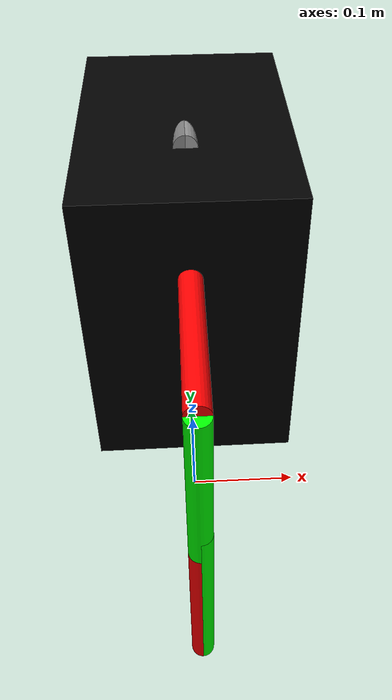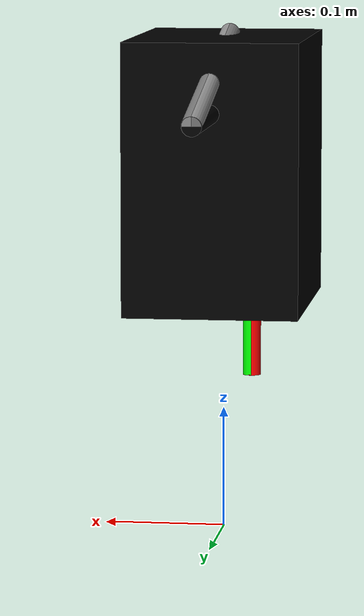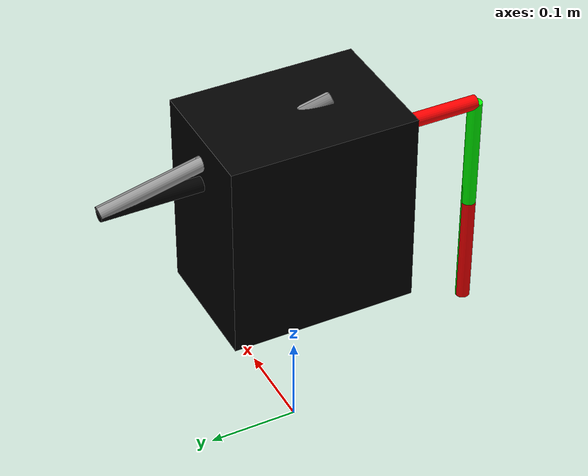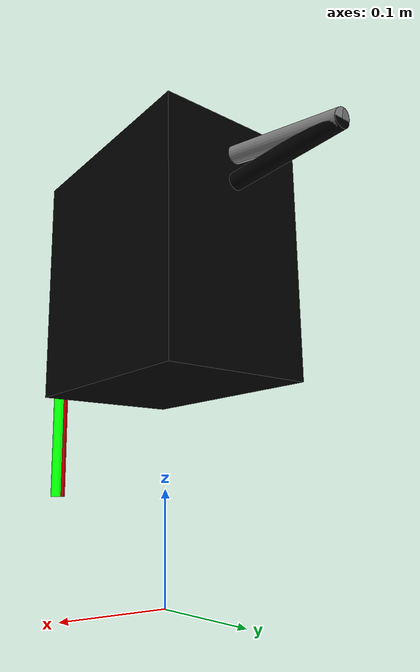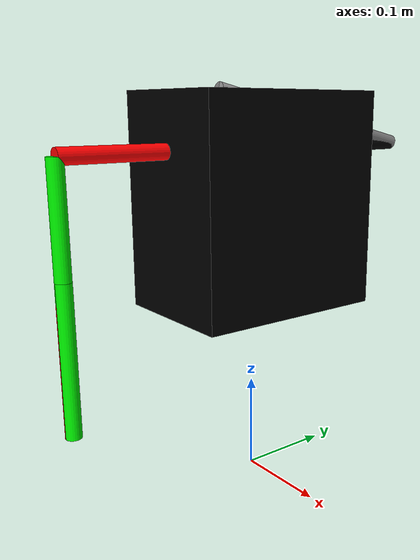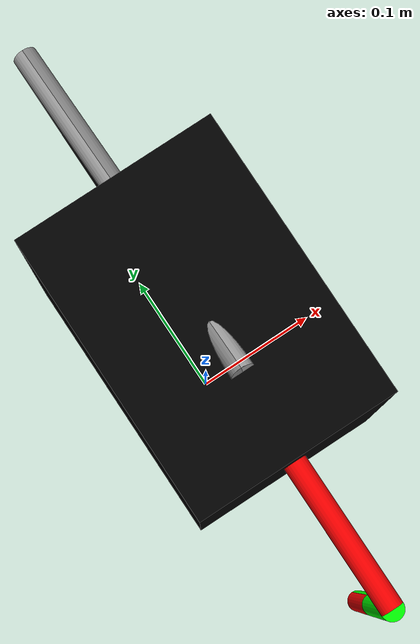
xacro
<?xml version="1.0"?>

<robot name="industrial_robot" xmlns:xacro="http://www.ros.org/wiki/xacro">
    <xacro:include filename="industrial_robot.xacro"/>
    <xacro:include filename="industrial_robot.ros2_control.xacro"/>
    <xacro:industrial_robot_ros2_control />
</robot>

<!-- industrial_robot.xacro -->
<robot xmlns:xacro="http://www.ros.org/wiki/xacro">
  <!-- Define xacro property for ros2_controllers config file path -->
  <!-- This allows the launch file to pass in the correct absolute path -->
  <!-- Default value is used if not provided by launch file -->
  <xacro:arg name="ros2_controllers_config" default="config/industrial_robot_ros2_controllers.yaml" />

  <material name="grey">
    <color rgba="0.5 0.5 0.5 1"/>
  </material>

  <material name="darkgrey">
    <color rgba="0.8 0.8 0.8 1"/>
  </material>

  <material name="blue">
    <color rgba="0 0 1 1"/>
  </material>

  <material name="red">
    <color rgba="1 0 0 1"/>
  </material>

  <material name="green">
    <color rgba="0 1 0 1"/>
  </material>

  <material name="black">
    <color rgba="0 0 0 1"/>
  </material>
  <!-- ================= TORSO ================= -->
  <link name="base_link">
    <visual>
      <geometry>
        <box size="0.143 0.205 0.222"/>
      </geometry>
      <origin xyz="0 0 0.3"/>
      <material name="black"/>

    </visual>
    <collision>
      <geometry>
        <box size="0.143 0.205 0.222"/>
      </geometry>
      <origin xyz="0 0 0.3"/>
    </collision>

    <inertial>
      <mass value="5.0" />
      <origin xyz="0 0 0.3" rpy="0 0 0"/>
      <inertia ixx="0.0228" ixy="0.0" ixz="0.0"
                iyy="0.0174" iyz="0.0"
                izz="0.0156"/>
    </inertial>
  </link>

  <!-- Shoulder height = 0.304 m -->
  <!-- Arm lateral offset = ±0.1025 m (half torso width) -->

  <!-- ================= LEFT ARM ================= -->

  <!-- Shoulder Pitch -->
  <joint name="left_shoulder_1" type="revolute">
    <parent link="base_link"/>
    <child link="left_link_1"/>

    <origin xyz="0 0.1025 0.354" rpy="0 0 0"/>

    <axis xyz="0 -1 0"/>

    <limit lower="-1.26" upper="4.44" effort="60" velocity="1.5"/>
  </joint>

  <!-- Link 1 - 11 cm -->
  <link name="left_link_1">
    <visual>
      <geometry>
        <cylinder length="0.11" radius="0.008"/>
      </geometry>
      <origin xyz="0 0.055 0" rpy="1.5708 0 0"/>
      <material name="black"/>
    </visual>

    <collision>
      <geometry>
        <box size="0.016 0.016 0.11"/>
      </geometry>
      <origin xyz="0 0.055 0" rpy="1.5708 0 0"/>
    </collision>

    <inertial>
      <origin xyz="0 0.055 0" rpy="1.5708 0 0"/>
      <mass value="1.0"/>
      <inertia
        ixx="0.001025" ixy="0.0" ixz="0.0"
        iyy="0.001025" iyz="0.0"
        izz="0.000032"/>
    </inertial>

  </link>

  <!-- Shoulder Roll -->
  <joint name="left_shoulder_2" type="revolute">
    <parent link="left_link_1"/>
    <child link="left_link_2"/>

    <origin xyz="0 0.11 0" rpy="-1.57 0 0"/>

    <axis xyz="1 0 0"/>

    <limit lower="2.7" upper="6.28" effort="60" velocity="1.5"/>
  </joint>

  <!-- Link 2 - 13 cm -->
  <link name="left_link_2">
    <visual>
      <geometry>
        <cylinder length="0.13" radius="0.008"/>
      </geometry>
      <origin xyz="0 0.065 0" rpy="1.5708 0 0"/>
      <material name="dgrey"/>
    </visual>

    <collision>
      <geometry>
        <box size="0.016 0.016 0.13"/>
      </geometry>
      <origin xyz="0 0.065 0" rpy="1.5708 0 0"/>

    </collision>

    <inertial>
      <origin xyz="0 0.065 0" rpy="1.5708 0 0"/>
      <mass value="1.0"/>
      <inertia
        ixx="0.001025" ixy="0.0" ixz="0.0"
        iyy="0.001025" iyz="0.0"
        izz="0.000032"/>
    </inertial>
  </link>

  <!-- Elbow Roll -->
  <joint name="left_elbow_1" type="revolute">
    <parent link="left_link_2"/>
    <child link="left_link_3"/>
    <origin xyz="0 0.13 0" rpy="0 1.57 0"/>
    <axis xyz="0 -1 0"/>
    <limit lower="0.0" upper="6.28" effort="50" velocity="1.5"/>
  </joint>

  <!-- Link 3 - 13 cm -->
  <link name="left_link_3">
    <visual>
      <geometry>
        <cylinder length="0.13" radius="0.008"/>
      </geometry>
      <origin xyz="0 0.065 0" rpy="1.5708 0 0"/>
      <material name="grey"/>
    </visual>

    <collision>
      <geometry>
        <box size="0.016 0.016 0.13"/>
      </geometry>
      <origin xyz="0 0.065 0" rpy="1.5708 0 0"/>

    </collision>

    <inertial>
      <origin xyz="0 0.065 0" rpy="1.5708 0 0"/>
      <mass value="1.0"/>
      <inertia
        ixx="0.001025" ixy="0.0" ixz="0.0"
        iyy="0.001025" iyz="0.0"
        izz="0.000032"/>
    </inertial>
  </link>

  <!-- Elbow Pitch -->
  <joint name="left_elbow_2" type="revolute">
    <parent link="left_link_3"/>
    <child link="left_link_4"/>
    <origin xyz="0 0.13 0" rpy="3.14 0 0"/>
    <axis xyz="1 0 0"/>
    <limit lower="0" upper="6.28" effort="50" velocity="1.5"/>
  </joint>

  <!-- Link 4 - 15 cm -->
  <link name="left_link_4">
    <visual>
      <geometry>
        <cylinder length="0.15" radius="0.008"/>
      </geometry>
      <origin xyz="0 0.075 0" rpy="1.5708 0 0"/>
      <material name="dgrey"/>
    </visual>

    <collision>
      <geometry>
        <box size="0.016 0.016 0.15"/>
      </geometry>
        <origin xyz="0 0.075 0" rpy="1.5708 0 0"/>

    </collision>

    <inertial>
      <origin xyz="0 0.075 0" rpy="1.5708 0 0"/>
      <mass value="1.0"/>
      <inertia
        ixx="0.001025" ixy="0.0" ixz="0.0"
        iyy="0.001025" iyz="0.0"
        izz="0.000032"/>
    </inertial>
  </link>

  <!-- Wrist Roll -->
  <joint name="left_wrist_roll_joint" type="revolute">
    <parent link="left_link_4"/>
    <child link="left_link_5"/>
    <origin xyz="0 0.13 0"/>
    <axis xyz="0 1 0"/>
    <limit lower="-3.2" upper="3.2" effort="50" velocity="1.5"/>
  </joint>

    <!-- Link 3 - 13 cm -->
  <link name="left_link_5">
    <visual>
      <geometry>
        <cylinder length="0.13" radius="0.008"/>
      </geometry>
      <origin xyz="0 0.065 0" rpy="1.5708 0 0"/>
      <material name="grey"/>
    </visual>

    <collision>
      <geometry>
        <box size="0.016 0.016 0.15"/>
      </geometry>
        <origin xyz="0 0.065 0" rpy="1.5708 0 0"/>
    </collision>

    <inertial>
      <origin xyz="0 0.065 0" rpy="1.5708 0 0"/>
      <mass value="1.0"/>
      <inertia
        ixx="0.001025" ixy="0.0" ixz="0.0"
        iyy="0.001025" iyz="0.0"
        izz="0.000032"/>
    </inertial>

  </link>

  <!-- ================= RIGHT ARM ================= -->

  <joint name="right_shoulder_1" type="revolute">
    <parent link="base_link"/>
    <child link="right_link_1"/>
    <origin xyz="0 -0.1025 0.354"/>
    <axis xyz="0 1 0"/>
    <limit lower="0.0" upper="6.28" effort="60" velocity="1.5"/>
  </joint>

  <link name="right_link_1">
    <visual>
      <geometry>
        <cylinder length="0.11" radius="0.008"/>
      </geometry>
      <origin xyz="0 -0.055 0" rpy="1.5708 0 0"/>
      <material name="red"/>
    </visual>

    <collision>
      <geometry>
        <box size="0.016 0.016 0.11"/>
      </geometry>
        <origin xyz="0 -0.055 0" rpy="1.5708 0 0"/>

    </collision>

    <inertial>
      <origin xyz="0 -0.055 0" rpy="1.5708 0 0"/>
      <mass value="1.0"/>
      <inertia
        ixx="0.001025" ixy="0.0" ixz="0.0"
        iyy="0.001025" iyz="0.0"
        izz="0.000032"/>
    </inertial>

  </link>

  <joint name="right_shoulder_2" type="revolute">
    <parent link="right_link_1"/>
    <child link="right_link_2"/>
    <origin xyz="0 -0.11 0" rpy="-4.71 0 0"/>
    <axis xyz="-1 0 0"/>
    <limit lower="0.0" upper="6.28" effort="60" velocity="1.5"/>
  </joint>

  <link name="right_link_2">
    <visual>
      <geometry>
        <cylinder length="0.13" radius="0.008"/>
      </geometry>
      <origin xyz="0 -0.065 0" rpy="1.5708 0 0"/>
      <material name="green"/>
    </visual>

    <collision>
      <geometry>
        <box size="0.016 0.016 0.13"/>
      </geometry>
      <origin xyz="0 -0.065 0" rpy="1.5708 0 0"/>

    </collision>

    <inertial>
      <origin xyz="0 -0.065 0" rpy="1.5708 0 0"/>
      <mass value="1.0"/>
      <inertia
        ixx="0.001025" ixy="0.0" ixz="0.0"
        iyy="0.001025" iyz="0.0"
        izz="0.000032"/>
    </inertial>

  </link>

  <joint name="right_elbow_1" type="revolute">
    <parent link="right_link_2"/>
    <child link="right_link_3"/>
    <origin xyz="0 -0.13 0" rpy="0 1.57 0"/>
    <axis xyz="0 1 0"/>
    <limit lower="0" upper="6.28" effort="50" velocity="1.5"/>
  </joint>

  <link name="right_link_3">
    <visual>
      <geometry>
        <cylinder length="0.13" radius="0.008"/>
      </geometry>
      <origin xyz="0 -0.065 0" rpy="1.5708 0 0"/>
      <material name="red"/>
    </visual>

    <collision>
      <geometry>
        <box size="0.016 0.016 0.13"/>
      </geometry>
        <origin xyz="0 -0.065 0" rpy="1.5708 0 0"/>

    </collision>

    <inertial>
      <origin xyz="0 -0.065 0" rpy="1.5708 0 0"/>
      <mass value="1.0"/>
      <inertia
        ixx="0.001025" ixy="0.0" ixz="0.0"
        iyy="0.001025" iyz="0.0"
        izz="0.000032"/>
    </inertial>

  </link>

  <joint name="right_elbow_2" type="revolute">
    <parent link="right_link_3"/>
    <child link="right_link_4"/>
    <origin xyz="0 -0.13 0" rpy="-3.14 0 0"/>
    <axis xyz="-1 0 0"/>
    <limit lower="0" upper="6.28" effort="50" velocity="1.5"/>
  </joint>

  <link name="right_link_4">
    <visual>
      <geometry>
        <cylinder length="0.15" radius="0.008"/>
      </geometry>
      <origin xyz="0 -0.075 0" rpy="1.5708 0 0"/>
      <material name="green"/>
    </visual>

    <collision>
      <geometry>
        <box size="0.016 0.016 0.15"/>
      </geometry>
      <origin xyz="0 -0.075 0" rpy="1.5708 0 0"/>
    </collision>

    <inertial>
      <origin xyz="0 -0.075 0" rpy="1.5708 0 0"/>
      <mass value="1.0"/>
      <inertia
        ixx="0.001025" ixy="0.0" ixz="0.0"
        iyy="0.001025" iyz="0.0"
        izz="0.000032"/>
    </inertial>

  </link>

  <gazebo>
    <plugin filename="gz_ros2_control-system" name="gz_ros2_control::GazeboSimROS2ControlPlugin">
      <!-- Use the dynamically provided config file path from xacro argument -->
      <!-- This path is passed from the launch file where ROS package resolution is available -->
      <!-- Reference xacro arguments using $(arg name) syntax, not ${...} -->
      <parameters>$(arg ros2_controllers_config)</parameters>
    </plugin>
  </gazebo>

</robot>
